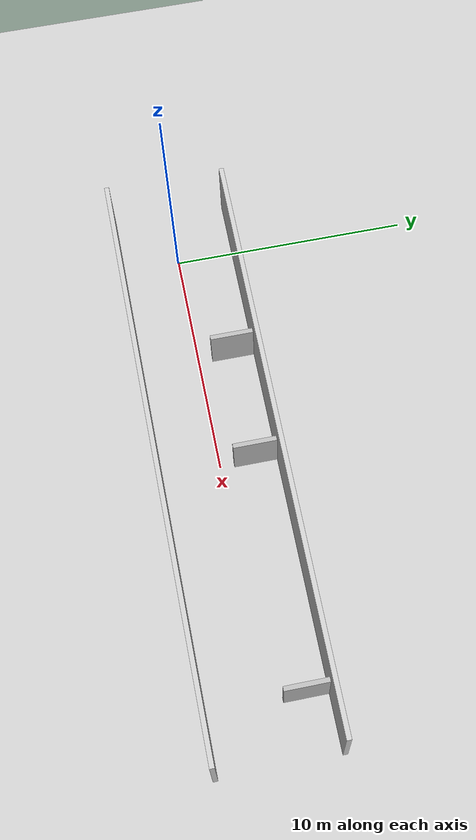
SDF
<?xml version="1.0" ?>
<sdf version="1.6">
  <world name="hotel_corridor_world">
    <!-- Ground Plane -->
    <include>
      <uri>model://ground_plane</uri>
    </include>

    <!-- Sun Light Source -->
    <include>
      <uri>model://sun</uri>
    </include>

    <!-- Physics Parameters -->
    <physics type="ode">
      <max_step_size>0.001</max_step_size>
      <real_time_factor>1.0</real_time_factor>
      <real_time_update_rate>1000</real_time_update_rate>
    </physics>

    <!-- Hotel Lobby & Corridor Wall Structure -->
    <!-- Main Corridor Left Wall -->
    <model name="corridor_wall_left">
      <pose>10.0 2.5 1.5 0 0 0</pose>
      <static>true</static>
      <link name="link">
        <collision name="collision">
          <geometry>
            <box>
              <size>25.0 0.2 3.0</size>
            </box>
          </geometry>
        </collision>
        <visual name="visual">
          <geometry>
            <box>
              <size>25.0 0.2 3.0</size>
            </box>
          </geometry>
          <material>
            <ambient>0.8 0.8 0.8 1</ambient>
            <diffuse>0.8 0.8 0.8 1</diffuse>
          </material>
        </visual>
      </link>
    </model>

    <!-- Main Corridor Right Wall -->
    <model name="corridor_wall_right">
      <pose>10.0 -2.5 1.5 0 0 0</pose>
      <static>true</static>
      <link name="link">
        <collision name="collision">
          <geometry>
            <box>
              <size>25.0 0.2 3.0</size>
            </box>
          </geometry>
        </collision>
        <visual name="visual">
          <geometry>
            <box>
              <size>25.0 0.2 3.0</size>
            </box>
          </geometry>
          <material>
            <ambient>0.8 0.8 0.8 1</ambient>
            <diffuse>0.8 0.8 0.8 1</diffuse>
          </material>
        </visual>
      </link>
    </model>

    <!-- Room 301 Door Pillar -->
    <model name="room_301_wall">
      <pose>5.0 1.5 1.0 0 0 0</pose>
      <static>true</static>
      <link name="link">
        <collision name="collision">
          <geometry>
            <box>
              <size>0.2 1.8 2.0</size>
            </box>
          </geometry>
        </collision>
        <visual name="visual">
          <geometry>
            <box>
              <size>0.2 1.8 2.0</size>
            </box>
          </geometry>
        </visual>
      </link>
    </model>

    <!-- Room 302 Door Pillar -->
    <model name="room_302_wall">
      <pose>10.0 1.5 1.0 0 0 0</pose>
      <static>true</static>
      <link name="link">
        <collision name="collision">
          <geometry>
            <box>
              <size>0.2 1.8 2.0</size>
            </box>
          </geometry>
        </collision>
        <visual name="visual">
          <geometry>
            <box>
              <size>0.2 1.8 2.0</size>
            </box>
          </geometry>
        </visual>
      </link>
    </model>

    <!-- Room 304 Door Pillar -->
    <model name="room_304_wall">
      <pose>20.0 1.5 1.0 0 0 0</pose>
      <static>true</static>
      <link name="link">
        <collision name="collision">
          <geometry>
            <box>
              <size>0.2 1.8 2.0</size>
            </box>
          </geometry>
        </collision>
        <visual name="visual">
          <geometry>
            <box>
              <size>0.2 1.8 2.0</size>
            </box>
          </geometry>
        </visual>
      </link>
    </model>

    <!-- Scene Lighting -->
    <scene>
      <ambient>0.5 0.5 0.5 1</ambient>
      <background>0.7 0.7 0.7 1</background>
      <shadows>true</shadows>
    </scene>
  </world>
</sdf>
